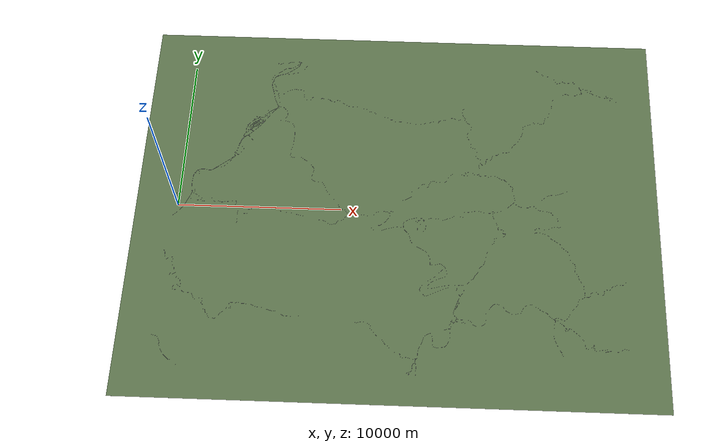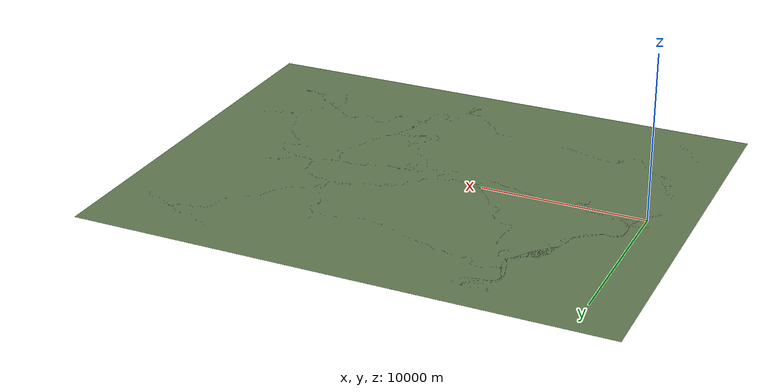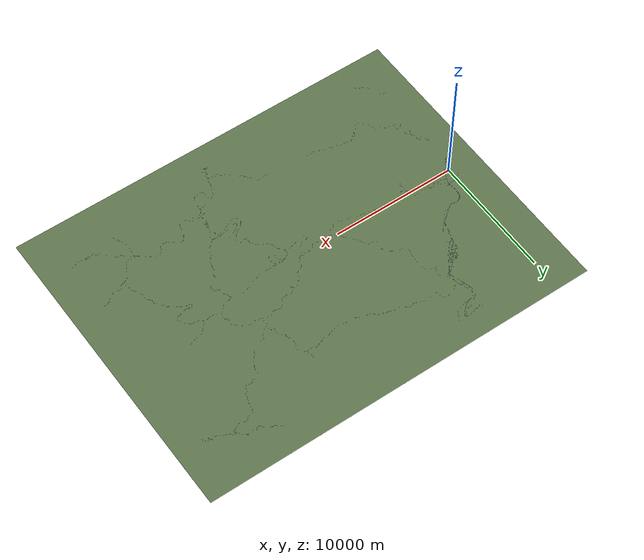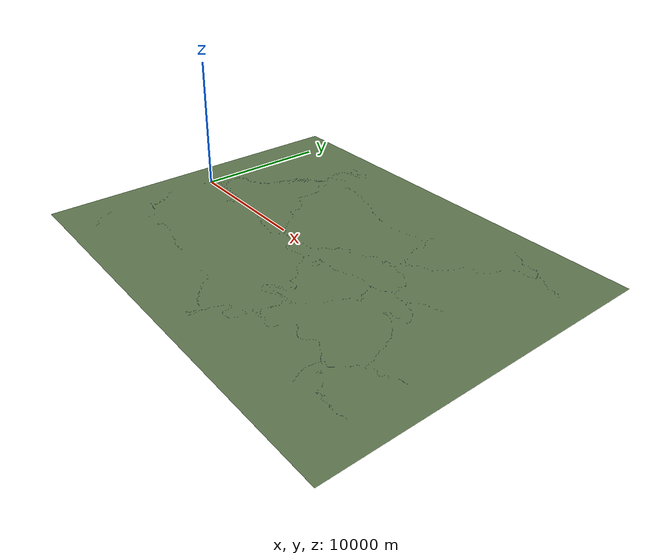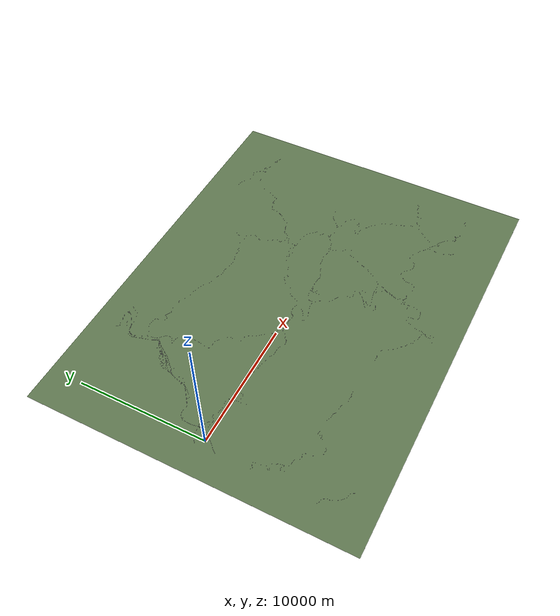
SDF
<?xml version="1.0" encoding="UTF-8"?>
<sdf version="1.9">
  <world name="kangwon_flat">
    <physics type="ode">
      <max_step_size>0.002</max_step_size>
      <real_time_factor>1.0</real_time_factor>
      <real_time_update_rate>500</real_time_update_rate>
    </physics>
    <gravity>0 0 -9.8</gravity>
    <magnetic_field>6e-06 2.3e-05 -4.2e-05</magnetic_field>
    <atmosphere type="adiabatic"/>
    <scene>
      <grid>false</grid>
      <ambient>0.4 0.4 0.4 1</ambient>
      <background>0.62 0.78 0.92 1</background>
      <shadows>false</shadows>
    </scene>
    <!-- 지면: 도로망 범위(x -0.5~27.3 km, y -10.5~10.9 km) + 여유. plane 은 dartsim 에서 2 km 상자가 되므로 상자를 쓴다 -->
    <model name="ground">
      <static>true</static>
      <link name="link">
        <pose>13400 200 -0.5 0 0 0</pose>
        <collision name="collision">
          <geometry><box><size>32000 25000 1</size></box></geometry>
          <surface>
            <friction><ode><mu>1.0</mu><mu2>1.0</mu2></ode></friction>
            <contact><collide_bitmask>65535</collide_bitmask></contact>
          </surface>
        </collision>
        <visual name="visual">
          <cast_shadows>false</cast_shadows>
          <geometry><box><size>32000 25000 1</size></box></geometry>
          <material><diffuse>0.36 0.45 0.30 1</diffuse><specular>0 0 0 0</specular></material>
        </visual>
      </link>
    </model>
    <!-- 도로 표시: 지면 위 0.03 m 에 그린다. 충돌 없음 -->
    <model name="road_marks">
      <static>true</static>
      <link name="link">
        <pose>0 0 0.03 0 0 0</pose>
        <visual name="visual">
          <cast_shadows>false</cast_shadows>
          <geometry><mesh><uri>model://adair_roads/roads.obj</uri></mesh></geometry>
          <material><ambient>0.25 0.25 0.27 1</ambient><diffuse>0.33 0.33 0.35 1</diffuse>
                    <specular>0.05 0.05 0.05 1</specular></material>
        </visual>
      </link>
    </model>
    <light name="sun" type="directional">
      <pose>0 0 500 0 0 0</pose>
      <cast_shadows>false</cast_shadows>
      <intensity>1</intensity>
      <direction>0.001 0.625 -0.78</direction>
      <diffuse>0.904 0.904 0.904 1</diffuse>
      <specular>0.271 0.271 0.271 1</specular>
    </light>
    <spherical_coordinates>
      <surface_model>EARTH_WGS84</surface_model>
      <world_frame_orientation>ENU</world_frame_orientation>
      <latitude_deg>38.0112</latitude_deg>
      <longitude_deg>128.122643</longitude_deg>
      <elevation>172.1</elevation>
    </spherical_coordinates>
  </world>
</sdf>
